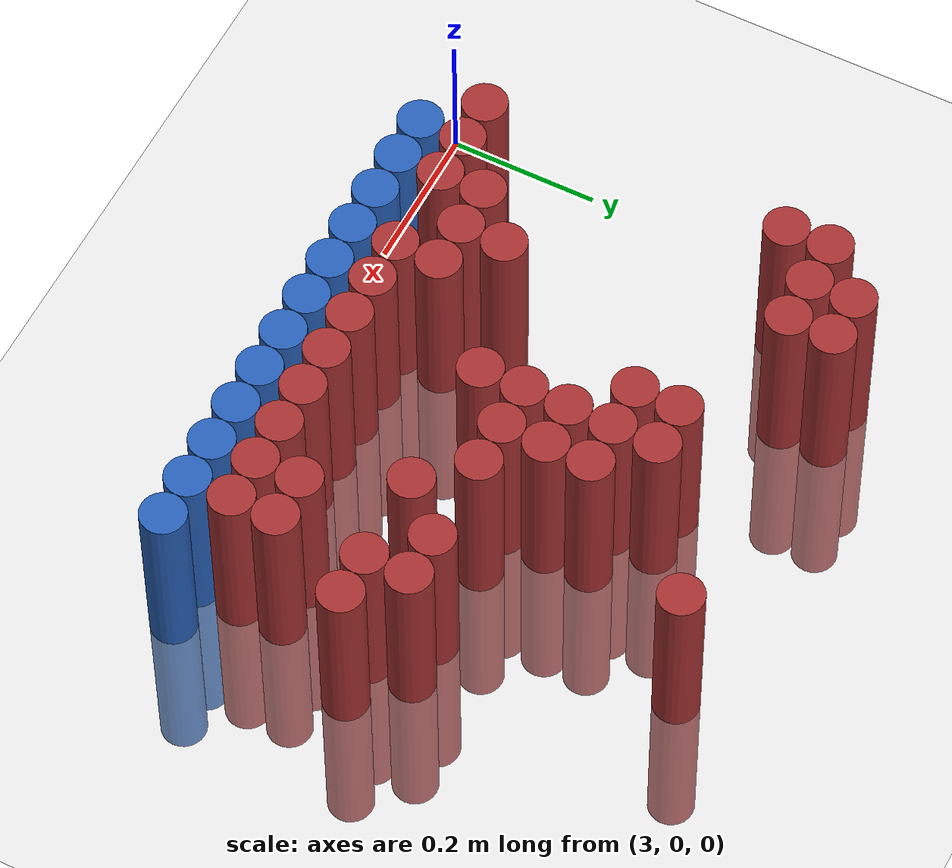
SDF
<sdf version="1.6">
 <world name="default">
  <model name="ground_plane">
   <static>1</static>
   <link name="link">
    <collision name="collision">
     <geometry><plane><normal>0 0 1</normal><size>100 100</size></plane></geometry>
     <surface><friction><ode><mu>100</mu><mu2>50</mu2></ode></friction></surface>
    </collision>
    <visual name="visual">
     <cast_shadows>0</cast_shadows>
     <geometry><plane><normal>0 0 1</normal><size>100 100</size></plane></geometry>
     <material>
      <script><uri>file://media/materials/scripts/gazebo.material</uri><name>Gazebo/Grey</name></script>
     </material>
    </visual>
   </link>
  </model>
  <model name="unit_cylinder_242">
   <static>1</static>
   <pose>3.150000 0.630000 0.000000 0.000000 0.000000 0.000000</pose>
   <link name="link">
    <inertial>
     <mass>1</mass>
     <inertia><ixx>0.145833</ixx><ixy>0</ixy><ixz>0</ixz><iyy>0.145833</iyy><iyz>0</iyz><izz>0.125</izz></inertia>
    </inertial>
    <collision name="collision">
     <geometry><cylinder><radius>0.030000</radius><length>0.5</length></cylinder></geometry>
    </collision>
    <visual name="visual">
     <geometry><cylinder><radius>0.030000</radius><length>0.5</length></cylinder></geometry>
     <material>
      <ambient>0.648000 0.192000 0.192000 1</ambient>
      <diffuse>0.648000 0.192000 0.192000 1</diffuse>
     </material>
     <material>
      <script><name>Gazebo/Grey</name><uri>file://media/materials/scripts/gazebo.material</uri></script>
     </material>
    </visual>
   </link>
  </model>
  <model name="unit_cylinder_243">
   <static>1</static>
   <pose>3.210000 0.630000 0.000000 0.000000 0.000000 0.000000</pose>
   <link name="link">
    <inertial>
     <mass>1</mass>
     <inertia><ixx>0.145833</ixx><ixy>0</ixy><ixz>0</ixz><iyy>0.145833</iyy><iyz>0</iyz><izz>0.125</izz></inertia>
    </inertial>
    <collision name="collision">
     <geometry><cylinder><radius>0.030000</radius><length>0.5</length></cylinder></geometry>
    </collision>
    <visual name="visual">
     <geometry><cylinder><radius>0.030000</radius><length>0.5</length></cylinder></geometry>
     <material>
      <ambient>0.648000 0.192000 0.192000 1</ambient>
      <diffuse>0.648000 0.192000 0.192000 1</diffuse>
     </material>
     <material>
      <script><name>Gazebo/Grey</name><uri>file://media/materials/scripts/gazebo.material</uri></script>
     </material>
    </visual>
   </link>
  </model>
  <model name="unit_cylinder_244">
   <static>1</static>
   <pose>3.630000 0.630000 0.000000 0.000000 0.000000 0.000000</pose>
   <link name="link">
    <inertial>
     <mass>1</mass>
     <inertia><ixx>0.145833</ixx><ixy>0</ixy><ixz>0</ixz><iyy>0.145833</iyy><iyz>0</iyz><izz>0.125</izz></inertia>
    </inertial>
    <collision name="collision">
     <geometry><cylinder><radius>0.030000</radius><length>0.5</length></cylinder></geometry>
    </collision>
    <visual name="visual">
     <geometry><cylinder><radius>0.030000</radius><length>0.5</length></cylinder></geometry>
     <material>
      <ambient>0.648000 0.192000 0.192000 1</ambient>
      <diffuse>0.648000 0.192000 0.192000 1</diffuse>
     </material>
     <material>
      <script><name>Gazebo/Grey</name><uri>file://media/materials/scripts/gazebo.material</uri></script>
     </material>
    </visual>
   </link>
  </model>
  <model name="unit_cylinder_247">
   <static>1</static>
   <pose>3.090000 0.570000 0.000000 0.000000 0.000000 0.000000</pose>
   <link name="link">
    <inertial>
     <mass>1</mass>
     <inertia><ixx>0.145833</ixx><ixy>0</ixy><ixz>0</ixz><iyy>0.145833</iyy><iyz>0</iyz><izz>0.125</izz></inertia>
    </inertial>
    <collision name="collision">
     <geometry><cylinder><radius>0.030000</radius><length>0.5</length></cylinder></geometry>
    </collision>
    <visual name="visual">
     <geometry><cylinder><radius>0.030000</radius><length>0.5</length></cylinder></geometry>
     <material>
      <ambient>0.648000 0.192000 0.192000 1</ambient>
      <diffuse>0.648000 0.192000 0.192000 1</diffuse>
     </material>
     <material>
      <script><name>Gazebo/Grey</name><uri>file://media/materials/scripts/gazebo.material</uri></script>
     </material>
    </visual>
   </link>
  </model>
  <model name="unit_cylinder_248">
   <static>1</static>
   <pose>3.150000 0.570000 0.000000 0.000000 0.000000 0.000000</pose>
   <link name="link">
    <inertial>
     <mass>1</mass>
     <inertia><ixx>0.145833</ixx><ixy>0</ixy><ixz>0</ixz><iyy>0.145833</iyy><iyz>0</iyz><izz>0.125</izz></inertia>
    </inertial>
    <collision name="collision">
     <geometry><cylinder><radius>0.030000</radius><length>0.5</length></cylinder></geometry>
    </collision>
    <visual name="visual">
     <geometry><cylinder><radius>0.030000</radius><length>0.5</length></cylinder></geometry>
     <material>
      <ambient>0.648000 0.192000 0.192000 1</ambient>
      <diffuse>0.648000 0.192000 0.192000 1</diffuse>
     </material>
     <material>
      <script><name>Gazebo/Grey</name><uri>file://media/materials/scripts/gazebo.material</uri></script>
     </material>
    </visual>
   </link>
  </model>
  <model name="unit_cylinder_249">
   <static>1</static>
   <pose>3.210000 0.570000 0.000000 0.000000 0.000000 0.000000</pose>
   <link name="link">
    <inertial>
     <mass>1</mass>
     <inertia><ixx>0.145833</ixx><ixy>0</ixy><ixz>0</ixz><iyy>0.145833</iyy><iyz>0</iyz><izz>0.125</izz></inertia>
    </inertial>
    <collision name="collision">
     <geometry><cylinder><radius>0.030000</radius><length>0.5</length></cylinder></geometry>
    </collision>
    <visual name="visual">
     <geometry><cylinder><radius>0.030000</radius><length>0.5</length></cylinder></geometry>
     <material>
      <ambient>0.648000 0.192000 0.192000 1</ambient>
      <diffuse>0.648000 0.192000 0.192000 1</diffuse>
     </material>
     <material>
      <script><name>Gazebo/Grey</name><uri>file://media/materials/scripts/gazebo.material</uri></script>
     </material>
    </visual>
   </link>
  </model>
  <model name="unit_cylinder_256">
   <static>1</static>
   <pose>3.090000 0.510000 0.000000 0.000000 0.000000 0.000000</pose>
   <link name="link">
    <inertial>
     <mass>1</mass>
     <inertia><ixx>0.145833</ixx><ixy>0</ixy><ixz>0</ixz><iyy>0.145833</iyy><iyz>0</iyz><izz>0.125</izz></inertia>
    </inertial>
    <collision name="collision">
     <geometry><cylinder><radius>0.030000</radius><length>0.5</length></cylinder></geometry>
    </collision>
    <visual name="visual">
     <geometry><cylinder><radius>0.030000</radius><length>0.5</length></cylinder></geometry>
     <material>
      <ambient>0.648000 0.192000 0.192000 1</ambient>
      <diffuse>0.648000 0.192000 0.192000 1</diffuse>
     </material>
     <material>
      <script><name>Gazebo/Grey</name><uri>file://media/materials/scripts/gazebo.material</uri></script>
     </material>
    </visual>
   </link>
  </model>
  <model name="unit_cylinder_257">
   <static>1</static>
   <pose>3.390000 0.510000 0.000000 0.000000 0.000000 0.000000</pose>
   <link name="link">
    <inertial>
     <mass>1</mass>
     <inertia><ixx>0.145833</ixx><ixy>0</ixy><ixz>0</ixz><iyy>0.145833</iyy><iyz>0</iyz><izz>0.125</izz></inertia>
    </inertial>
    <collision name="collision">
     <geometry><cylinder><radius>0.030000</radius><length>0.5</length></cylinder></geometry>
    </collision>
    <visual name="visual">
     <geometry><cylinder><radius>0.030000</radius><length>0.5</length></cylinder></geometry>
     <material>
      <ambient>0.648000 0.192000 0.192000 1</ambient>
      <diffuse>0.648000 0.192000 0.192000 1</diffuse>
     </material>
     <material>
      <script><name>Gazebo/Grey</name><uri>file://media/materials/scripts/gazebo.material</uri></script>
     </material>
    </visual>
   </link>
  </model>
  <model name="unit_cylinder_258">
   <static>1</static>
   <pose>3.450000 0.510000 0.000000 0.000000 0.000000 0.000000</pose>
   <link name="link">
    <inertial>
     <mass>1</mass>
     <inertia><ixx>0.145833</ixx><ixy>0</ixy><ixz>0</ixz><iyy>0.145833</iyy><iyz>0</iyz><izz>0.125</izz></inertia>
    </inertial>
    <collision name="collision">
     <geometry><cylinder><radius>0.030000</radius><length>0.5</length></cylinder></geometry>
    </collision>
    <visual name="visual">
     <geometry><cylinder><radius>0.030000</radius><length>0.5</length></cylinder></geometry>
     <material>
      <ambient>0.648000 0.192000 0.192000 1</ambient>
      <diffuse>0.648000 0.192000 0.192000 1</diffuse>
     </material>
     <material>
      <script><name>Gazebo/Grey</name><uri>file://media/materials/scripts/gazebo.material</uri></script>
     </material>
    </visual>
   </link>
  </model>
  <model name="unit_cylinder_268">
   <static>1</static>
   <pose>3.390000 0.450000 0.000000 0.000000 0.000000 0.000000</pose>
   <link name="link">
    <inertial>
     <mass>1</mass>
     <inertia><ixx>0.145833</ixx><ixy>0</ixy><ixz>0</ixz><iyy>0.145833</iyy><iyz>0</iyz><izz>0.125</izz></inertia>
    </inertial>
    <collision name="collision">
     <geometry><cylinder><radius>0.030000</radius><length>0.5</length></cylinder></geometry>
    </collision>
    <visual name="visual">
     <geometry><cylinder><radius>0.030000</radius><length>0.5</length></cylinder></geometry>
     <material>
      <ambient>0.648000 0.192000 0.192000 1</ambient>
      <diffuse>0.648000 0.192000 0.192000 1</diffuse>
     </material>
     <material>
      <script><name>Gazebo/Grey</name><uri>file://media/materials/scripts/gazebo.material</uri></script>
     </material>
    </visual>
   </link>
  </model>
  <model name="unit_cylinder_269">
   <static>1</static>
   <pose>3.450000 0.450000 0.000000 0.000000 0.000000 0.000000</pose>
   <link name="link">
    <inertial>
     <mass>1</mass>
     <inertia><ixx>0.145833</ixx><ixy>0</ixy><ixz>0</ixz><iyy>0.145833</iyy><iyz>0</iyz><izz>0.125</izz></inertia>
    </inertial>
    <collision name="collision">
     <geometry><cylinder><radius>0.030000</radius><length>0.5</length></cylinder></geometry>
    </collision>
    <visual name="visual">
     <geometry><cylinder><radius>0.030000</radius><length>0.5</length></cylinder></geometry>
     <material>
      <ambient>0.648000 0.192000 0.192000 1</ambient>
      <diffuse>0.648000 0.192000 0.192000 1</diffuse>
     </material>
     <material>
      <script><name>Gazebo/Grey</name><uri>file://media/materials/scripts/gazebo.material</uri></script>
     </material>
    </visual>
   </link>
  </model>
  <model name="unit_cylinder_270">
   <static>1</static>
   <pose>3.510000 0.450000 0.000000 0.000000 0.000000 0.000000</pose>
   <link name="link">
    <inertial>
     <mass>1</mass>
     <inertia><ixx>0.145833</ixx><ixy>0</ixy><ixz>0</ixz><iyy>0.145833</iyy><iyz>0</iyz><izz>0.125</izz></inertia>
    </inertial>
    <collision name="collision">
     <geometry><cylinder><radius>0.030000</radius><length>0.5</length></cylinder></geometry>
    </collision>
    <visual name="visual">
     <geometry><cylinder><radius>0.030000</radius><length>0.5</length></cylinder></geometry>
     <material>
      <ambient>0.648000 0.192000 0.192000 1</ambient>
      <diffuse>0.648000 0.192000 0.192000 1</diffuse>
     </material>
     <material>
      <script><name>Gazebo/Grey</name><uri>file://media/materials/scripts/gazebo.material</uri></script>
     </material>
    </visual>
   </link>
  </model>
  <model name="unit_cylinder_281">
   <static>1</static>
   <pose>3.450000 0.390000 0.000000 0.000000 0.000000 0.000000</pose>
   <link name="link">
    <inertial>
     <mass>1</mass>
     <inertia><ixx>0.145833</ixx><ixy>0</ixy><ixz>0</ixz><iyy>0.145833</iyy><iyz>0</iyz><izz>0.125</izz></inertia>
    </inertial>
    <collision name="collision">
     <geometry><cylinder><radius>0.030000</radius><length>0.5</length></cylinder></geometry>
    </collision>
    <visual name="visual">
     <geometry><cylinder><radius>0.030000</radius><length>0.5</length></cylinder></geometry>
     <material>
      <ambient>0.648000 0.192000 0.192000 1</ambient>
      <diffuse>0.648000 0.192000 0.192000 1</diffuse>
     </material>
     <material>
      <script><name>Gazebo/Grey</name><uri>file://media/materials/scripts/gazebo.material</uri></script>
     </material>
    </visual>
   </link>
  </model>
  <model name="unit_cylinder_282">
   <static>1</static>
   <pose>3.510000 0.390000 0.000000 0.000000 0.000000 0.000000</pose>
   <link name="link">
    <inertial>
     <mass>1</mass>
     <inertia><ixx>0.145833</ixx><ixy>0</ixy><ixz>0</ixz><iyy>0.145833</iyy><iyz>0</iyz><izz>0.125</izz></inertia>
    </inertial>
    <collision name="collision">
     <geometry><cylinder><radius>0.030000</radius><length>0.5</length></cylinder></geometry>
    </collision>
    <visual name="visual">
     <geometry><cylinder><radius>0.030000</radius><length>0.5</length></cylinder></geometry>
     <material>
      <ambient>0.648000 0.192000 0.192000 1</ambient>
      <diffuse>0.648000 0.192000 0.192000 1</diffuse>
     </material>
     <material>
      <script><name>Gazebo/Grey</name><uri>file://media/materials/scripts/gazebo.material</uri></script>
     </material>
    </visual>
   </link>
  </model>
  <model name="unit_cylinder_288">
   <static>1</static>
   <pose>3.450000 0.330000 0.000000 0.000000 0.000000 0.000000</pose>
   <link name="link">
    <inertial>
     <mass>1</mass>
     <inertia><ixx>0.145833</ixx><ixy>0</ixy><ixz>0</ixz><iyy>0.145833</iyy><iyz>0</iyz><izz>0.125</izz></inertia>
    </inertial>
    <collision name="collision">
     <geometry><cylinder><radius>0.030000</radius><length>0.5</length></cylinder></geometry>
    </collision>
    <visual name="visual">
     <geometry><cylinder><radius>0.030000</radius><length>0.5</length></cylinder></geometry>
     <material>
      <ambient>0.648000 0.192000 0.192000 1</ambient>
      <diffuse>0.648000 0.192000 0.192000 1</diffuse>
     </material>
     <material>
      <script><name>Gazebo/Grey</name><uri>file://media/materials/scripts/gazebo.material</uri></script>
     </material>
    </visual>
   </link>
  </model>
  <model name="unit_cylinder_289">
   <static>1</static>
   <pose>3.510000 0.330000 0.000000 0.000000 0.000000 0.000000</pose>
   <link name="link">
    <inertial>
     <mass>1</mass>
     <inertia><ixx>0.145833</ixx><ixy>0</ixy><ixz>0</ixz><iyy>0.145833</iyy><iyz>0</iyz><izz>0.125</izz></inertia>
    </inertial>
    <collision name="collision">
     <geometry><cylinder><radius>0.030000</radius><length>0.5</length></cylinder></geometry>
    </collision>
    <visual name="visual">
     <geometry><cylinder><radius>0.030000</radius><length>0.5</length></cylinder></geometry>
     <material>
      <ambient>0.648000 0.192000 0.192000 1</ambient>
      <diffuse>0.648000 0.192000 0.192000 1</diffuse>
     </material>
     <material>
      <script><name>Gazebo/Grey</name><uri>file://media/materials/scripts/gazebo.material</uri></script>
     </material>
    </visual>
   </link>
  </model>
  <model name="unit_cylinder_290">
   <static>1</static>
   <pose>3.570000 0.330000 0.000000 0.000000 0.000000 0.000000</pose>
   <link name="link">
    <inertial>
     <mass>1</mass>
     <inertia><ixx>0.145833</ixx><ixy>0</ixy><ixz>0</ixz><iyy>0.145833</iyy><iyz>0</iyz><izz>0.125</izz></inertia>
    </inertial>
    <collision name="collision">
     <geometry><cylinder><radius>0.030000</radius><length>0.5</length></cylinder></geometry>
    </collision>
    <visual name="visual">
     <geometry><cylinder><radius>0.030000</radius><length>0.5</length></cylinder></geometry>
     <material>
      <ambient>0.648000 0.192000 0.192000 1</ambient>
      <diffuse>0.648000 0.192000 0.192000 1</diffuse>
     </material>
     <material>
      <script><name>Gazebo/Grey</name><uri>file://media/materials/scripts/gazebo.material</uri></script>
     </material>
    </visual>
   </link>
  </model>
  <model name="unit_cylinder_291">
   <static>1</static>
   <pose>3.690000 0.330000 0.000000 0.000000 0.000000 0.000000</pose>
   <link name="link">
    <inertial>
     <mass>1</mass>
     <inertia><ixx>0.145833</ixx><ixy>0</ixy><ixz>0</ixz><iyy>0.145833</iyy><iyz>0</iyz><izz>0.125</izz></inertia>
    </inertial>
    <collision name="collision">
     <geometry><cylinder><radius>0.030000</radius><length>0.5</length></cylinder></geometry>
    </collision>
    <visual name="visual">
     <geometry><cylinder><radius>0.030000</radius><length>0.5</length></cylinder></geometry>
     <material>
      <ambient>0.648000 0.192000 0.192000 1</ambient>
      <diffuse>0.648000 0.192000 0.192000 1</diffuse>
     </material>
     <material>
      <script><name>Gazebo/Grey</name><uri>file://media/materials/scripts/gazebo.material</uri></script>
     </material>
    </visual>
   </link>
  </model>
  <model name="unit_cylinder_292">
   <static>1</static>
   <pose>3.750000 0.330000 0.000000 0.000000 0.000000 0.000000</pose>
   <link name="link">
    <inertial>
     <mass>1</mass>
     <inertia><ixx>0.145833</ixx><ixy>0</ixy><ixz>0</ixz><iyy>0.145833</iyy><iyz>0</iyz><izz>0.125</izz></inertia>
    </inertial>
    <collision name="collision">
     <geometry><cylinder><radius>0.030000</radius><length>0.5</length></cylinder></geometry>
    </collision>
    <visual name="visual">
     <geometry><cylinder><radius>0.030000</radius><length>0.5</length></cylinder></geometry>
     <material>
      <ambient>0.648000 0.192000 0.192000 1</ambient>
      <diffuse>0.648000 0.192000 0.192000 1</diffuse>
     </material>
     <material>
      <script><name>Gazebo/Grey</name><uri>file://media/materials/scripts/gazebo.material</uri></script>
     </material>
    </visual>
   </link>
  </model>
  <model name="unit_cylinder_295">
   <static>1</static>
   <pose>3.450000 0.270000 0.000000 0.000000 0.000000 0.000000</pose>
   <link name="link">
    <inertial>
     <mass>1</mass>
     <inertia><ixx>0.145833</ixx><ixy>0</ixy><ixz>0</ixz><iyy>0.145833</iyy><iyz>0</iyz><izz>0.125</izz></inertia>
    </inertial>
    <collision name="collision">
     <geometry><cylinder><radius>0.030000</radius><length>0.5</length></cylinder></geometry>
    </collision>
    <visual name="visual">
     <geometry><cylinder><radius>0.030000</radius><length>0.5</length></cylinder></geometry>
     <material>
      <ambient>0.648000 0.192000 0.192000 1</ambient>
      <diffuse>0.648000 0.192000 0.192000 1</diffuse>
     </material>
     <material>
      <script><name>Gazebo/Grey</name><uri>file://media/materials/scripts/gazebo.material</uri></script>
     </material>
    </visual>
   </link>
  </model>
  <model name="unit_cylinder_296">
   <static>1</static>
   <pose>3.630000 0.270000 0.000000 0.000000 0.000000 0.000000</pose>
   <link name="link">
    <inertial>
     <mass>1</mass>
     <inertia><ixx>0.145833</ixx><ixy>0</ixy><ixz>0</ixz><iyy>0.145833</iyy><iyz>0</iyz><izz>0.125</izz></inertia>
    </inertial>
    <collision name="collision">
     <geometry><cylinder><radius>0.030000</radius><length>0.5</length></cylinder></geometry>
    </collision>
    <visual name="visual">
     <geometry><cylinder><radius>0.030000</radius><length>0.5</length></cylinder></geometry>
     <material>
      <ambient>0.648000 0.192000 0.192000 1</ambient>
      <diffuse>0.648000 0.192000 0.192000 1</diffuse>
     </material>
     <material>
      <script><name>Gazebo/Grey</name><uri>file://media/materials/scripts/gazebo.material</uri></script>
     </material>
    </visual>
   </link>
  </model>
  <model name="unit_cylinder_297">
   <static>1</static>
   <pose>3.750000 0.270000 0.000000 0.000000 0.000000 0.000000</pose>
   <link name="link">
    <inertial>
     <mass>1</mass>
     <inertia><ixx>0.145833</ixx><ixy>0</ixy><ixz>0</ixz><iyy>0.145833</iyy><iyz>0</iyz><izz>0.125</izz></inertia>
    </inertial>
    <collision name="collision">
     <geometry><cylinder><radius>0.030000</radius><length>0.5</length></cylinder></geometry>
    </collision>
    <visual name="visual">
     <geometry><cylinder><radius>0.030000</radius><length>0.5</length></cylinder></geometry>
     <material>
      <ambient>0.648000 0.192000 0.192000 1</ambient>
      <diffuse>0.648000 0.192000 0.192000 1</diffuse>
     </material>
     <material>
      <script><name>Gazebo/Grey</name><uri>file://media/materials/scripts/gazebo.material</uri></script>
     </material>
    </visual>
   </link>
  </model>
  <model name="unit_cylinder_298">
   <static>1</static>
   <pose>3.810000 0.270000 0.000000 0.000000 0.000000 0.000000</pose>
   <link name="link">
    <inertial>
     <mass>1</mass>
     <inertia><ixx>0.145833</ixx><ixy>0</ixy><ixz>0</ixz><iyy>0.145833</iyy><iyz>0</iyz><izz>0.125</izz></inertia>
    </inertial>
    <collision name="collision">
     <geometry><cylinder><radius>0.030000</radius><length>0.5</length></cylinder></geometry>
    </collision>
    <visual name="visual">
     <geometry><cylinder><radius>0.030000</radius><length>0.5</length></cylinder></geometry>
     <material>
      <ambient>0.648000 0.192000 0.192000 1</ambient>
      <diffuse>0.648000 0.192000 0.192000 1</diffuse>
     </material>
     <material>
      <script><name>Gazebo/Grey</name><uri>file://media/materials/scripts/gazebo.material</uri></script>
     </material>
    </visual>
   </link>
  </model>
  <model name="unit_cylinder_300">
   <static>1</static>
   <pose>3.270000 0.210000 0.000000 0.000000 0.000000 0.000000</pose>
   <link name="link">
    <inertial>
     <mass>1</mass>
     <inertia><ixx>0.145833</ixx><ixy>0</ixy><ixz>0</ixz><iyy>0.145833</iyy><iyz>0</iyz><izz>0.125</izz></inertia>
    </inertial>
    <collision name="collision">
     <geometry><cylinder><radius>0.030000</radius><length>0.5</length></cylinder></geometry>
    </collision>
    <visual name="visual">
     <geometry><cylinder><radius>0.030000</radius><length>0.5</length></cylinder></geometry>
     <material>
      <ambient>0.648000 0.192000 0.192000 1</ambient>
      <diffuse>0.648000 0.192000 0.192000 1</diffuse>
     </material>
     <material>
      <script><name>Gazebo/Grey</name><uri>file://media/materials/scripts/gazebo.material</uri></script>
     </material>
    </visual>
   </link>
  </model>
  <model name="unit_cylinder_306">
   <static>1</static>
   <pose>3.210000 0.150000 0.000000 0.000000 0.000000 0.000000</pose>
   <link name="link">
    <inertial>
     <mass>1</mass>
     <inertia><ixx>0.145833</ixx><ixy>0</ixy><ixz>0</ixz><iyy>0.145833</iyy><iyz>0</iyz><izz>0.125</izz></inertia>
    </inertial>
    <collision name="collision">
     <geometry><cylinder><radius>0.030000</radius><length>0.5</length></cylinder></geometry>
    </collision>
    <visual name="visual">
     <geometry><cylinder><radius>0.030000</radius><length>0.5</length></cylinder></geometry>
     <material>
      <ambient>0.648000 0.192000 0.192000 1</ambient>
      <diffuse>0.648000 0.192000 0.192000 1</diffuse>
     </material>
     <material>
      <script><name>Gazebo/Grey</name><uri>file://media/materials/scripts/gazebo.material</uri></script>
     </material>
    </visual>
   </link>
  </model>
  <model name="unit_cylinder_307">
   <static>1</static>
   <pose>3.270000 0.150000 0.000000 0.000000 0.000000 0.000000</pose>
   <link name="link">
    <inertial>
     <mass>1</mass>
     <inertia><ixx>0.145833</ixx><ixy>0</ixy><ixz>0</ixz><iyy>0.145833</iyy><iyz>0</iyz><izz>0.125</izz></inertia>
    </inertial>
    <collision name="collision">
     <geometry><cylinder><radius>0.030000</radius><length>0.5</length></cylinder></geometry>
    </collision>
    <visual name="visual">
     <geometry><cylinder><radius>0.030000</radius><length>0.5</length></cylinder></geometry>
     <material>
      <ambient>0.648000 0.192000 0.192000 1</ambient>
      <diffuse>0.648000 0.192000 0.192000 1</diffuse>
     </material>
     <material>
      <script><name>Gazebo/Grey</name><uri>file://media/materials/scripts/gazebo.material</uri></script>
     </material>
    </visual>
   </link>
  </model>
  <model name="unit_cylinder_308">
   <static>1</static>
   <pose>3.330000 0.150000 0.000000 0.000000 0.000000 0.000000</pose>
   <link name="link">
    <inertial>
     <mass>1</mass>
     <inertia><ixx>0.145833</ixx><ixy>0</ixy><ixz>0</ixz><iyy>0.145833</iyy><iyz>0</iyz><izz>0.125</izz></inertia>
    </inertial>
    <collision name="collision">
     <geometry><cylinder><radius>0.030000</radius><length>0.5</length></cylinder></geometry>
    </collision>
    <visual name="visual">
     <geometry><cylinder><radius>0.030000</radius><length>0.5</length></cylinder></geometry>
     <material>
      <ambient>0.648000 0.192000 0.192000 1</ambient>
      <diffuse>0.648000 0.192000 0.192000 1</diffuse>
     </material>
     <material>
      <script><name>Gazebo/Grey</name><uri>file://media/materials/scripts/gazebo.material</uri></script>
     </material>
    </visual>
   </link>
  </model>
  <model name="unit_cylinder_309">
   <static>1</static>
   <pose>3.690000 0.150000 0.000000 0.000000 0.000000 0.000000</pose>
   <link name="link">
    <inertial>
     <mass>1</mass>
     <inertia><ixx>0.145833</ixx><ixy>0</ixy><ixz>0</ixz><iyy>0.145833</iyy><iyz>0</iyz><izz>0.125</izz></inertia>
    </inertial>
    <collision name="collision">
     <geometry><cylinder><radius>0.030000</radius><length>0.5</length></cylinder></geometry>
    </collision>
    <visual name="visual">
     <geometry><cylinder><radius>0.030000</radius><length>0.5</length></cylinder></geometry>
     <material>
      <ambient>0.648000 0.192000 0.192000 1</ambient>
      <diffuse>0.648000 0.192000 0.192000 1</diffuse>
     </material>
     <material>
      <script><name>Gazebo/Grey</name><uri>file://media/materials/scripts/gazebo.material</uri></script>
     </material>
    </visual>
   </link>
  </model>
  <model name="unit_cylinder_310">
   <static>1</static>
   <pose>3.750000 0.150000 0.000000 0.000000 0.000000 0.000000</pose>
   <link name="link">
    <inertial>
     <mass>1</mass>
     <inertia><ixx>0.145833</ixx><ixy>0</ixy><ixz>0</ixz><iyy>0.145833</iyy><iyz>0</iyz><izz>0.125</izz></inertia>
    </inertial>
    <collision name="collision">
     <geometry><cylinder><radius>0.030000</radius><length>0.5</length></cylinder></geometry>
    </collision>
    <visual name="visual">
     <geometry><cylinder><radius>0.030000</radius><length>0.5</length></cylinder></geometry>
     <material>
      <ambient>0.648000 0.192000 0.192000 1</ambient>
      <diffuse>0.648000 0.192000 0.192000 1</diffuse>
     </material>
     <material>
      <script><name>Gazebo/Grey</name><uri>file://media/materials/scripts/gazebo.material</uri></script>
     </material>
    </visual>
   </link>
  </model>
  <model name="unit_cylinder_319">
   <static>1</static>
   <pose>3.090000 0.090000 0.000000 0.000000 0.000000 0.000000</pose>
   <link name="link">
    <inertial>
     <mass>1</mass>
     <inertia><ixx>0.145833</ixx><ixy>0</ixy><ixz>0</ixz><iyy>0.145833</iyy><iyz>0</iyz><izz>0.125</izz></inertia>
    </inertial>
    <collision name="collision">
     <geometry><cylinder><radius>0.030000</radius><length>0.5</length></cylinder></geometry>
    </collision>
    <visual name="visual">
     <geometry><cylinder><radius>0.030000</radius><length>0.5</length></cylinder></geometry>
     <material>
      <ambient>0.648000 0.192000 0.192000 1</ambient>
      <diffuse>0.648000 0.192000 0.192000 1</diffuse>
     </material>
     <material>
      <script><name>Gazebo/Grey</name><uri>file://media/materials/scripts/gazebo.material</uri></script>
     </material>
    </visual>
   </link>
  </model>
  <model name="unit_cylinder_320">
   <static>1</static>
   <pose>3.150000 0.090000 0.000000 0.000000 0.000000 0.000000</pose>
   <link name="link">
    <inertial>
     <mass>1</mass>
     <inertia><ixx>0.145833</ixx><ixy>0</ixy><ixz>0</ixz><iyy>0.145833</iyy><iyz>0</iyz><izz>0.125</izz></inertia>
    </inertial>
    <collision name="collision">
     <geometry><cylinder><radius>0.030000</radius><length>0.5</length></cylinder></geometry>
    </collision>
    <visual name="visual">
     <geometry><cylinder><radius>0.030000</radius><length>0.5</length></cylinder></geometry>
     <material>
      <ambient>0.648000 0.192000 0.192000 1</ambient>
      <diffuse>0.648000 0.192000 0.192000 1</diffuse>
     </material>
     <material>
      <script><name>Gazebo/Grey</name><uri>file://media/materials/scripts/gazebo.material</uri></script>
     </material>
    </visual>
   </link>
  </model>
  <model name="unit_cylinder_321">
   <static>1</static>
   <pose>3.210000 0.090000 0.000000 0.000000 0.000000 0.000000</pose>
   <link name="link">
    <inertial>
     <mass>1</mass>
     <inertia><ixx>0.145833</ixx><ixy>0</ixy><ixz>0</ixz><iyy>0.145833</iyy><iyz>0</iyz><izz>0.125</izz></inertia>
    </inertial>
    <collision name="collision">
     <geometry><cylinder><radius>0.030000</radius><length>0.5</length></cylinder></geometry>
    </collision>
    <visual name="visual">
     <geometry><cylinder><radius>0.030000</radius><length>0.5</length></cylinder></geometry>
     <material>
      <ambient>0.648000 0.192000 0.192000 1</ambient>
      <diffuse>0.648000 0.192000 0.192000 1</diffuse>
     </material>
     <material>
      <script><name>Gazebo/Grey</name><uri>file://media/materials/scripts/gazebo.material</uri></script>
     </material>
    </visual>
   </link>
  </model>
  <model name="unit_cylinder_322">
   <static>1</static>
   <pose>3.330000 0.090000 0.000000 0.000000 0.000000 0.000000</pose>
   <link name="link">
    <inertial>
     <mass>1</mass>
     <inertia><ixx>0.145833</ixx><ixy>0</ixy><ixz>0</ixz><iyy>0.145833</iyy><iyz>0</iyz><izz>0.125</izz></inertia>
    </inertial>
    <collision name="collision">
     <geometry><cylinder><radius>0.030000</radius><length>0.5</length></cylinder></geometry>
    </collision>
    <visual name="visual">
     <geometry><cylinder><radius>0.030000</radius><length>0.5</length></cylinder></geometry>
     <material>
      <ambient>0.648000 0.192000 0.192000 1</ambient>
      <diffuse>0.648000 0.192000 0.192000 1</diffuse>
     </material>
     <material>
      <script><name>Gazebo/Grey</name><uri>file://media/materials/scripts/gazebo.material</uri></script>
     </material>
    </visual>
   </link>
  </model>
  <model name="unit_cylinder_323">
   <static>1</static>
   <pose>3.390000 0.090000 0.000000 0.000000 0.000000 0.000000</pose>
   <link name="link">
    <inertial>
     <mass>1</mass>
     <inertia><ixx>0.145833</ixx><ixy>0</ixy><ixz>0</ixz><iyy>0.145833</iyy><iyz>0</iyz><izz>0.125</izz></inertia>
    </inertial>
    <collision name="collision">
     <geometry><cylinder><radius>0.030000</radius><length>0.5</length></cylinder></geometry>
    </collision>
    <visual name="visual">
     <geometry><cylinder><radius>0.030000</radius><length>0.5</length></cylinder></geometry>
     <material>
      <ambient>0.648000 0.192000 0.192000 1</ambient>
      <diffuse>0.648000 0.192000 0.192000 1</diffuse>
     </material>
     <material>
      <script><name>Gazebo/Grey</name><uri>file://media/materials/scripts/gazebo.material</uri></script>
     </material>
    </visual>
   </link>
  </model>
  <model name="unit_cylinder_324">
   <static>1</static>
   <pose>3.450000 0.090000 0.000000 0.000000 0.000000 0.000000</pose>
   <link name="link">
    <inertial>
     <mass>1</mass>
     <inertia><ixx>0.145833</ixx><ixy>0</ixy><ixz>0</ixz><iyy>0.145833</iyy><iyz>0</iyz><izz>0.125</izz></inertia>
    </inertial>
    <collision name="collision">
     <geometry><cylinder><radius>0.030000</radius><length>0.5</length></cylinder></geometry>
    </collision>
    <visual name="visual">
     <geometry><cylinder><radius>0.030000</radius><length>0.5</length></cylinder></geometry>
     <material>
      <ambient>0.648000 0.192000 0.192000 1</ambient>
      <diffuse>0.648000 0.192000 0.192000 1</diffuse>
     </material>
     <material>
      <script><name>Gazebo/Grey</name><uri>file://media/materials/scripts/gazebo.material</uri></script>
     </material>
    </visual>
   </link>
  </model>
  <model name="unit_cylinder_325">
   <static>1</static>
   <pose>3.510000 0.090000 0.000000 0.000000 0.000000 0.000000</pose>
   <link name="link">
    <inertial>
     <mass>1</mass>
     <inertia><ixx>0.145833</ixx><ixy>0</ixy><ixz>0</ixz><iyy>0.145833</iyy><iyz>0</iyz><izz>0.125</izz></inertia>
    </inertial>
    <collision name="collision">
     <geometry><cylinder><radius>0.030000</radius><length>0.5</length></cylinder></geometry>
    </collision>
    <visual name="visual">
     <geometry><cylinder><radius>0.030000</radius><length>0.5</length></cylinder></geometry>
     <material>
      <ambient>0.648000 0.192000 0.192000 1</ambient>
      <diffuse>0.648000 0.192000 0.192000 1</diffuse>
     </material>
     <material>
      <script><name>Gazebo/Grey</name><uri>file://media/materials/scripts/gazebo.material</uri></script>
     </material>
    </visual>
   </link>
  </model>
  <model name="unit_cylinder_326">
   <static>1</static>
   <pose>3.570000 0.090000 0.000000 0.000000 0.000000 0.000000</pose>
   <link name="link">
    <inertial>
     <mass>1</mass>
     <inertia><ixx>0.145833</ixx><ixy>0</ixy><ixz>0</ixz><iyy>0.145833</iyy><iyz>0</iyz><izz>0.125</izz></inertia>
    </inertial>
    <collision name="collision">
     <geometry><cylinder><radius>0.030000</radius><length>0.5</length></cylinder></geometry>
    </collision>
    <visual name="visual">
     <geometry><cylinder><radius>0.030000</radius><length>0.5</length></cylinder></geometry>
     <material>
      <ambient>0.648000 0.192000 0.192000 1</ambient>
      <diffuse>0.648000 0.192000 0.192000 1</diffuse>
     </material>
     <material>
      <script><name>Gazebo/Grey</name><uri>file://media/materials/scripts/gazebo.material</uri></script>
     </material>
    </visual>
   </link>
  </model>
  <model name="unit_cylinder_327">
   <static>1</static>
   <pose>3.630000 0.090000 0.000000 0.000000 0.000000 0.000000</pose>
   <link name="link">
    <inertial>
     <mass>1</mass>
     <inertia><ixx>0.145833</ixx><ixy>0</ixy><ixz>0</ixz><iyy>0.145833</iyy><iyz>0</iyz><izz>0.125</izz></inertia>
    </inertial>
    <collision name="collision">
     <geometry><cylinder><radius>0.030000</radius><length>0.5</length></cylinder></geometry>
    </collision>
    <visual name="visual">
     <geometry><cylinder><radius>0.030000</radius><length>0.5</length></cylinder></geometry>
     <material>
      <ambient>0.648000 0.192000 0.192000 1</ambient>
      <diffuse>0.648000 0.192000 0.192000 1</diffuse>
     </material>
     <material>
      <script><name>Gazebo/Grey</name><uri>file://media/materials/scripts/gazebo.material</uri></script>
     </material>
    </visual>
   </link>
  </model>
  <model name="unit_cylinder_328">
   <static>1</static>
   <pose>3.690000 0.090000 0.000000 0.000000 0.000000 0.000000</pose>
   <link name="link">
    <inertial>
     <mass>1</mass>
     <inertia><ixx>0.145833</ixx><ixy>0</ixy><ixz>0</ixz><iyy>0.145833</iyy><iyz>0</iyz><izz>0.125</izz></inertia>
    </inertial>
    <collision name="collision">
     <geometry><cylinder><radius>0.030000</radius><length>0.5</length></cylinder></geometry>
    </collision>
    <visual name="visual">
     <geometry><cylinder><radius>0.030000</radius><length>0.5</length></cylinder></geometry>
     <material>
      <ambient>0.648000 0.192000 0.192000 1</ambient>
      <diffuse>0.648000 0.192000 0.192000 1</diffuse>
     </material>
     <material>
      <script><name>Gazebo/Grey</name><uri>file://media/materials/scripts/gazebo.material</uri></script>
     </material>
    </visual>
   </link>
  </model>
  <model name="unit_cylinder_329">
   <static>1</static>
   <pose>3.750000 0.090000 0.000000 0.000000 0.000000 0.000000</pose>
   <link name="link">
    <inertial>
     <mass>1</mass>
     <inertia><ixx>0.145833</ixx><ixy>0</ixy><ixz>0</ixz><iyy>0.145833</iyy><iyz>0</iyz><izz>0.125</izz></inertia>
    </inertial>
    <collision name="collision">
     <geometry><cylinder><radius>0.030000</radius><length>0.5</length></cylinder></geometry>
    </collision>
    <visual name="visual">
     <geometry><cylinder><radius>0.030000</radius><length>0.5</length></cylinder></geometry>
     <material>
      <ambient>0.648000 0.192000 0.192000 1</ambient>
      <diffuse>0.648000 0.192000 0.192000 1</diffuse>
     </material>
     <material>
      <script><name>Gazebo/Grey</name><uri>file://media/materials/scripts/gazebo.material</uri></script>
     </material>
    </visual>
   </link>
  </model>
  <model name="unit_cylinder_348">
   <static>1</static>
   <pose>3.150000 0.030000 0.000000 0.000000 0.000000 0.000000</pose>
   <link name="link">
    <inertial>
     <mass>1</mass>
     <inertia><ixx>0.145833</ixx><ixy>0</ixy><ixz>0</ixz><iyy>0.145833</iyy><iyz>0</iyz><izz>0.125</izz></inertia>
    </inertial>
    <collision name="collision">
     <geometry><cylinder><radius>0.030000</radius><length>0.5</length></cylinder></geometry>
    </collision>
    <visual name="visual">
     <geometry><cylinder><radius>0.030000</radius><length>0.5</length></cylinder></geometry>
     <material>
      <ambient>0.152000 0.379000 0.720000 1</ambient>
      <diffuse>0.152000 0.379000 0.720000 1</diffuse>
     </material>
     <material>
      <script><name>Gazebo/Grey</name><uri>file://media/materials/scripts/gazebo.material</uri></script>
     </material>
    </visual>
   </link>
  </model>
  <model name="unit_cylinder_349">
   <static>1</static>
   <pose>3.210000 0.030000 0.000000 0.000000 0.000000 0.000000</pose>
   <link name="link">
    <inertial>
     <mass>1</mass>
     <inertia><ixx>0.145833</ixx><ixy>0</ixy><ixz>0</ixz><iyy>0.145833</iyy><iyz>0</iyz><izz>0.125</izz></inertia>
    </inertial>
    <collision name="collision">
     <geometry><cylinder><radius>0.030000</radius><length>0.5</length></cylinder></geometry>
    </collision>
    <visual name="visual">
     <geometry><cylinder><radius>0.030000</radius><length>0.5</length></cylinder></geometry>
     <material>
      <ambient>0.152000 0.379000 0.720000 1</ambient>
      <diffuse>0.152000 0.379000 0.720000 1</diffuse>
     </material>
     <material>
      <script><name>Gazebo/Grey</name><uri>file://media/materials/scripts/gazebo.material</uri></script>
     </material>
    </visual>
   </link>
  </model>
  <model name="unit_cylinder_350">
   <static>1</static>
   <pose>3.270000 0.030000 0.000000 0.000000 0.000000 0.000000</pose>
   <link name="link">
    <inertial>
     <mass>1</mass>
     <inertia><ixx>0.145833</ixx><ixy>0</ixy><ixz>0</ixz><iyy>0.145833</iyy><iyz>0</iyz><izz>0.125</izz></inertia>
    </inertial>
    <collision name="collision">
     <geometry><cylinder><radius>0.030000</radius><length>0.5</length></cylinder></geometry>
    </collision>
    <visual name="visual">
     <geometry><cylinder><radius>0.030000</radius><length>0.5</length></cylinder></geometry>
     <material>
      <ambient>0.152000 0.379000 0.720000 1</ambient>
      <diffuse>0.152000 0.379000 0.720000 1</diffuse>
     </material>
     <material>
      <script><name>Gazebo/Grey</name><uri>file://media/materials/scripts/gazebo.material</uri></script>
     </material>
    </visual>
   </link>
  </model>
  <model name="unit_cylinder_351">
   <static>1</static>
   <pose>3.330000 0.030000 0.000000 0.000000 0.000000 0.000000</pose>
   <link name="link">
    <inertial>
     <mass>1</mass>
     <inertia><ixx>0.145833</ixx><ixy>0</ixy><ixz>0</ixz><iyy>0.145833</iyy><iyz>0</iyz><izz>0.125</izz></inertia>
    </inertial>
    <collision name="collision">
     <geometry><cylinder><radius>0.030000</radius><length>0.5</length></cylinder></geometry>
    </collision>
    <visual name="visual">
     <geometry><cylinder><radius>0.030000</radius><length>0.5</length></cylinder></geometry>
     <material>
      <ambient>0.152000 0.379000 0.720000 1</ambient>
      <diffuse>0.152000 0.379000 0.720000 1</diffuse>
     </material>
     <material>
      <script><name>Gazebo/Grey</name><uri>file://media/materials/scripts/gazebo.material</uri></script>
     </material>
    </visual>
   </link>
  </model>
  <model name="unit_cylinder_352">
   <static>1</static>
   <pose>3.390000 0.030000 0.000000 0.000000 0.000000 0.000000</pose>
   <link name="link">
    <inertial>
     <mass>1</mass>
     <inertia><ixx>0.145833</ixx><ixy>0</ixy><ixz>0</ixz><iyy>0.145833</iyy><iyz>0</iyz><izz>0.125</izz></inertia>
    </inertial>
    <collision name="collision">
     <geometry><cylinder><radius>0.030000</radius><length>0.5</length></cylinder></geometry>
    </collision>
    <visual name="visual">
     <geometry><cylinder><radius>0.030000</radius><length>0.5</length></cylinder></geometry>
     <material>
      <ambient>0.152000 0.379000 0.720000 1</ambient>
      <diffuse>0.152000 0.379000 0.720000 1</diffuse>
     </material>
     <material>
      <script><name>Gazebo/Grey</name><uri>file://media/materials/scripts/gazebo.material</uri></script>
     </material>
    </visual>
   </link>
  </model>
  <model name="unit_cylinder_353">
   <static>1</static>
   <pose>3.450000 0.030000 0.000000 0.000000 0.000000 0.000000</pose>
   <link name="link">
    <inertial>
     <mass>1</mass>
     <inertia><ixx>0.145833</ixx><ixy>0</ixy><ixz>0</ixz><iyy>0.145833</iyy><iyz>0</iyz><izz>0.125</izz></inertia>
    </inertial>
    <collision name="collision">
     <geometry><cylinder><radius>0.030000</radius><length>0.5</length></cylinder></geometry>
    </collision>
    <visual name="visual">
     <geometry><cylinder><radius>0.030000</radius><length>0.5</length></cylinder></geometry>
     <material>
      <ambient>0.152000 0.379000 0.720000 1</ambient>
      <diffuse>0.152000 0.379000 0.720000 1</diffuse>
     </material>
     <material>
      <script><name>Gazebo/Grey</name><uri>file://media/materials/scripts/gazebo.material</uri></script>
     </material>
    </visual>
   </link>
  </model>
  <model name="unit_cylinder_354">
   <static>1</static>
   <pose>3.510000 0.030000 0.000000 0.000000 0.000000 0.000000</pose>
   <link name="link">
    <inertial>
     <mass>1</mass>
     <inertia><ixx>0.145833</ixx><ixy>0</ixy><ixz>0</ixz><iyy>0.145833</iyy><iyz>0</iyz><izz>0.125</izz></inertia>
    </inertial>
    <collision name="collision">
     <geometry><cylinder><radius>0.030000</radius><length>0.5</length></cylinder></geometry>
    </collision>
    <visual name="visual">
     <geometry><cylinder><radius>0.030000</radius><length>0.5</length></cylinder></geometry>
     <material>
      <ambient>0.152000 0.379000 0.720000 1</ambient>
      <diffuse>0.152000 0.379000 0.720000 1</diffuse>
     </material>
     <material>
      <script><name>Gazebo/Grey</name><uri>file://media/materials/scripts/gazebo.material</uri></script>
     </material>
    </visual>
   </link>
  </model>
  <model name="unit_cylinder_355">
   <static>1</static>
   <pose>3.570000 0.030000 0.000000 0.000000 0.000000 0.000000</pose>
   <link name="link">
    <inertial>
     <mass>1</mass>
     <inertia><ixx>0.145833</ixx><ixy>0</ixy><ixz>0</ixz><iyy>0.145833</iyy><iyz>0</iyz><izz>0.125</izz></inertia>
    </inertial>
    <collision name="collision">
     <geometry><cylinder><radius>0.030000</radius><length>0.5</length></cylinder></geometry>
    </collision>
    <visual name="visual">
     <geometry><cylinder><radius>0.030000</radius><length>0.5</length></cylinder></geometry>
     <material>
      <ambient>0.152000 0.379000 0.720000 1</ambient>
      <diffuse>0.152000 0.379000 0.720000 1</diffuse>
     </material>
     <material>
      <script><name>Gazebo/Grey</name><uri>file://media/materials/scripts/gazebo.material</uri></script>
     </material>
    </visual>
   </link>
  </model>
  <model name="unit_cylinder_356">
   <static>1</static>
   <pose>3.630000 0.030000 0.000000 0.000000 0.000000 0.000000</pose>
   <link name="link">
    <inertial>
     <mass>1</mass>
     <inertia><ixx>0.145833</ixx><ixy>0</ixy><ixz>0</ixz><iyy>0.145833</iyy><iyz>0</iyz><izz>0.125</izz></inertia>
    </inertial>
    <collision name="collision">
     <geometry><cylinder><radius>0.030000</radius><length>0.5</length></cylinder></geometry>
    </collision>
    <visual name="visual">
     <geometry><cylinder><radius>0.030000</radius><length>0.5</length></cylinder></geometry>
     <material>
      <ambient>0.152000 0.379000 0.720000 1</ambient>
      <diffuse>0.152000 0.379000 0.720000 1</diffuse>
     </material>
     <material>
      <script><name>Gazebo/Grey</name><uri>file://media/materials/scripts/gazebo.material</uri></script>
     </material>
    </visual>
   </link>
  </model>
  <model name="unit_cylinder_357">
   <static>1</static>
   <pose>3.690000 0.030000 0.000000 0.000000 0.000000 0.000000</pose>
   <link name="link">
    <inertial>
     <mass>1</mass>
     <inertia><ixx>0.145833</ixx><ixy>0</ixy><ixz>0</ixz><iyy>0.145833</iyy><iyz>0</iyz><izz>0.125</izz></inertia>
    </inertial>
    <collision name="collision">
     <geometry><cylinder><radius>0.030000</radius><length>0.5</length></cylinder></geometry>
    </collision>
    <visual name="visual">
     <geometry><cylinder><radius>0.030000</radius><length>0.5</length></cylinder></geometry>
     <material>
      <ambient>0.152000 0.379000 0.720000 1</ambient>
      <diffuse>0.152000 0.379000 0.720000 1</diffuse>
     </material>
     <material>
      <script><name>Gazebo/Grey</name><uri>file://media/materials/scripts/gazebo.material</uri></script>
     </material>
    </visual>
   </link>
  </model>
  <model name="unit_cylinder_358">
   <static>1</static>
   <pose>3.750000 0.030000 0.000000 0.000000 0.000000 0.000000</pose>
   <link name="link">
    <inertial>
     <mass>1</mass>
     <inertia><ixx>0.145833</ixx><ixy>0</ixy><ixz>0</ixz><iyy>0.145833</iyy><iyz>0</iyz><izz>0.125</izz></inertia>
    </inertial>
    <collision name="collision">
     <geometry><cylinder><radius>0.030000</radius><length>0.5</length></cylinder></geometry>
    </collision>
    <visual name="visual">
     <geometry><cylinder><radius>0.030000</radius><length>0.5</length></cylinder></geometry>
     <material>
      <ambient>0.152000 0.379000 0.720000 1</ambient>
      <diffuse>0.152000 0.379000 0.720000 1</diffuse>
     </material>
     <material>
      <script><name>Gazebo/Grey</name><uri>file://media/materials/scripts/gazebo.material</uri></script>
     </material>
    </visual>
   </link>
  </model>
  <model name="unit_cylinder_359">
   <static>1</static>
   <pose>3.810000 0.030000 0.000000 0.000000 0.000000 0.000000</pose>
   <link name="link">
    <inertial>
     <mass>1</mass>
     <inertia><ixx>0.145833</ixx><ixy>0</ixy><ixz>0</ixz><iyy>0.145833</iyy><iyz>0</iyz><izz>0.125</izz></inertia>
    </inertial>
    <collision name="collision">
     <geometry><cylinder><radius>0.030000</radius><length>0.5</length></cylinder></geometry>
    </collision>
    <visual name="visual">
     <geometry><cylinder><radius>0.030000</radius><length>0.5</length></cylinder></geometry>
     <material>
      <ambient>0.152000 0.379000 0.720000 1</ambient>
      <diffuse>0.152000 0.379000 0.720000 1</diffuse>
     </material>
     <material>
      <script><name>Gazebo/Grey</name><uri>file://media/materials/scripts/gazebo.material</uri></script>
     </material>
    </visual>
   </link>
  </model>
 </world>
</sdf>
